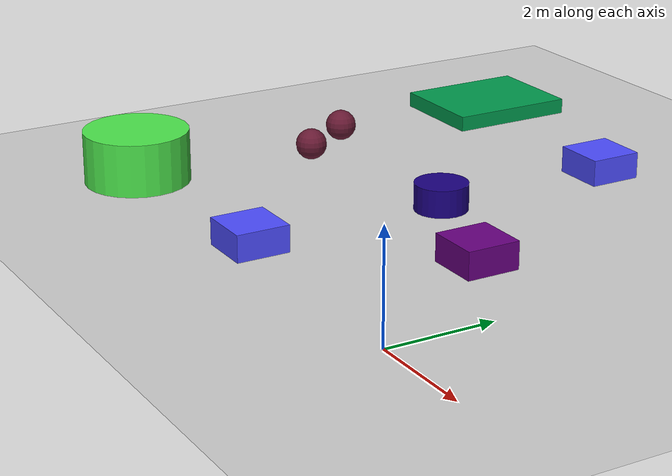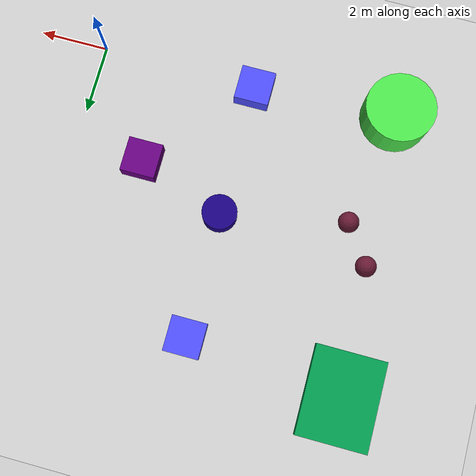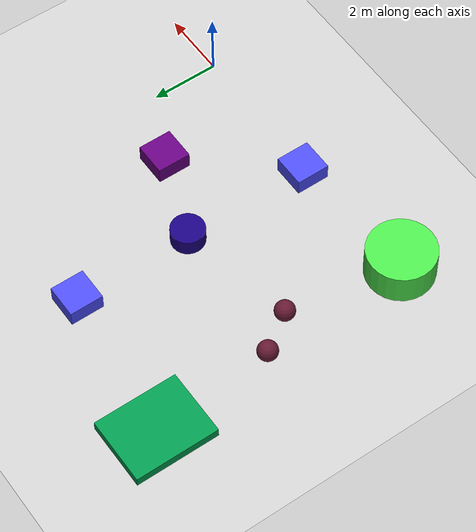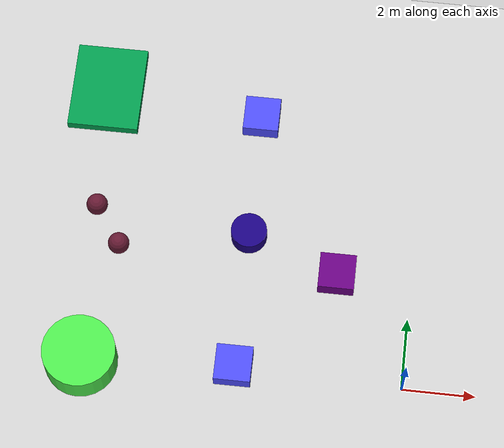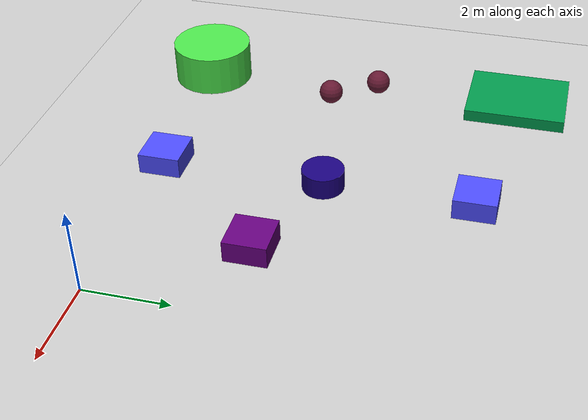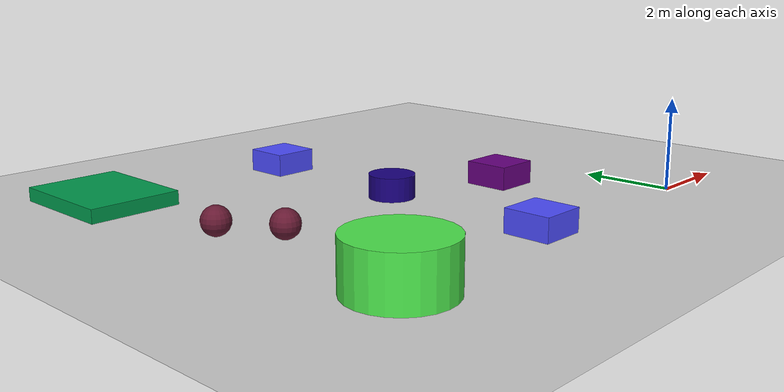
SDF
<sdf version="1.7">
 <world name="default">
  <model name="ground_plane">
   <static>1</static>
   <link name="link">
    <collision name="collision">
     <geometry><plane><normal>0 0 1</normal><size>100 100</size></plane></geometry>
     <surface><friction><ode><mu>100</mu><mu2>50</mu2></ode></friction></surface>
    </collision>
    <visual name="visual">
     <cast_shadows>0</cast_shadows>
     <geometry><plane><normal>0 0 1</normal><size>100 100</size></plane></geometry>
     <material>
      <script><uri>file://media/materials/scripts/gazebo.material</uri><name>Gazebo/Grey</name></script>
     </material>
    </visual>
   </link>
  </model>
  <model name="bed">
   <link name="link">
    <inertial>
     <mass>1</mass>
     <inertia>
      <ixx>0.166667</ixx>
      <ixy>0</ixy>
      <ixz>0</ixz>
      <iyy>0.166667</iyy>
      <iyz>0</iyz>
      <izz>0.166667</izz>
     </inertia>
    </inertial>
    <visual name="visual">
     <geometry><box><size>2 2.5 0.3</size></box></geometry>
     <material>
      <script><name>Gazebo/Grey</name><uri>file://media/materials/scripts/gazebo.material</uri></script>
      <shader type="pixel"><normal_map>__default__</normal_map></shader>
      <ambient>0 0.6 0.3 1</ambient>
      <diffuse>0.7 0.7 0.7 1</diffuse>
      <specular>0.01 0.01 0.01 1</specular>
      <emissive>0 0 0 1</emissive>
     </material>
    </visual>
    <collision name="collision">
     <geometry><box><size>2 2.5 0.3</size></box></geometry>
     <surface>
      <friction>
       <ode><mu>1</mu><mu2>1</mu2><fdir1>0 0 0</fdir1><slip1>0</slip1><slip2>0</slip2></ode>
       <torsional>
        <coefficient>1</coefficient>
        <patch_radius>0</patch_radius>
        <surface_radius>0</surface_radius>
        <use_patch_radius>1</use_patch_radius>
        <ode><slip>0</slip></ode>
       </torsional>
      </friction>
      <bounce><restitution_coefficient>0</restitution_coefficient><threshold>1e+06</threshold></bounce>
      <contact>
       <collide_without_contact>0</collide_without_contact>
       <collide_without_contact_bitmask>1</collide_without_contact_bitmask>
       <collide_bitmask>1</collide_bitmask>
       <ode>
        <soft_cfm>0</soft_cfm>
        <soft_erp>0.2</soft_erp>
        <kp>1e+13</kp>
        <kd>1</kd>
        <max_vel>0.01</max_vel>
        <min_depth>0</min_depth>
       </ode>
       <bullet>
        <split_impulse>1</split_impulse>
        <split_impulse_penetration_threshold>-0.01</split_impulse_penetration_threshold>
        <soft_cfm>0</soft_cfm>
        <soft_erp>0.2</soft_erp>
        <kp>1e+13</kp>
        <kd>1</kd>
       </bullet>
      </contact>
     </surface>
    </collision>
   </link>
   <static>0</static>
   <pose>-9.08934 8.03274 0.146251 -1e-05 0 0</pose>
  </model>
  <model name="unit_sphere777">
   <link name="link">
    <inertial>
     <mass>1</mass>
     <inertia><ixx>0.1</ixx><ixy>0</ixy><ixz>0</ixz><iyy>0.1</iyy><iyz>0</iyz><izz>0.1</izz></inertia>
    </inertial>
    <visual name="visual">
     <geometry><sphere><radius>0.3</radius></sphere></geometry>
     <material>
      <script><name>Gazebo/Grey</name><uri>file://media/materials/scripts/gazebo.material</uri></script>
      <shader type="pixel"><normal_map>__default__</normal_map></shader>
      <ambient>0.4 0.1 0.2 0</ambient>
      <diffuse>0.7 0.7 0.7 1</diffuse>
      <specular>0.01 0.01 0.01 1</specular>
      <emissive>0 0 0 1</emissive>
     </material>
    </visual>
    <collision name="collision">
     <geometry><sphere><radius>0.3</radius></sphere></geometry>
     <surface>
      <friction>
       <ode><mu>1</mu><mu2>1</mu2><fdir1>0 0 0</fdir1><slip1>0</slip1><slip2>0</slip2></ode>
       <torsional>
        <coefficient>1</coefficient>
        <patch_radius>0</patch_radius>
        <surface_radius>0</surface_radius>
        <use_patch_radius>1</use_patch_radius>
        <ode><slip>0</slip></ode>
       </torsional>
      </friction>
      <bounce><restitution_coefficient>0</restitution_coefficient><threshold>1e+06</threshold></bounce>
      <contact>
       <collide_without_contact>0</collide_without_contact>
       <collide_without_contact_bitmask>1</collide_without_contact_bitmask>
       <collide_bitmask>1</collide_bitmask>
       <ode>
        <soft_cfm>0</soft_cfm>
        <soft_erp>0.2</soft_erp>
        <kp>1e+13</kp>
        <kd>1</kd>
        <max_vel>0.01</max_vel>
        <min_depth>0</min_depth>
       </ode>
       <bullet>
        <split_impulse>1</split_impulse>
        <split_impulse_penetration_threshold>-0.01</split_impulse_penetration_threshold>
        <soft_cfm>0</soft_cfm>
        <soft_erp>0.2</soft_erp>
        <kp>1e+13</kp>
        <kd>1</kd>
       </bullet>
      </contact>
     </surface>
    </collision>
   </link>
   <static>0</static>
   <pose>-8.89889 4.39773 0.302461 0 -0 0</pose>
  </model>
  <model name="unit_sphere777_clone">
   <link name="link">
    <inertial>
     <mass>1</mass>
     <inertia><ixx>0.1</ixx><ixy>0</ixy><ixz>0</ixz><iyy>0.1</iyy><iyz>0</iyz><izz>0.1</izz></inertia>
    </inertial>
    <visual name="visual">
     <geometry><sphere><radius>0.3</radius></sphere></geometry>
     <material>
      <script><name>Gazebo/Grey</name><uri>file://media/materials/scripts/gazebo.material</uri></script>
      <shader type="pixel"><normal_map>__default__</normal_map></shader>
      <ambient>0.4 0.1 0.2 0</ambient>
      <diffuse>0.7 0.7 0.7 1</diffuse>
      <specular>0.01 0.01 0.01 1</specular>
      <emissive>0 0 0 1</emissive>
     </material>
    </visual>
    <collision name="collision">
     <geometry><sphere><radius>0.3</radius></sphere></geometry>
     <surface>
      <friction>
       <ode><mu>1</mu><mu2>1</mu2><fdir1>0 0 0</fdir1><slip1>0</slip1><slip2>0</slip2></ode>
       <torsional>
        <coefficient>1</coefficient>
        <patch_radius>0</patch_radius>
        <surface_radius>0</surface_radius>
        <use_patch_radius>1</use_patch_radius>
        <ode><slip>0</slip></ode>
       </torsional>
      </friction>
      <bounce><restitution_coefficient>0</restitution_coefficient><threshold>1e+06</threshold></bounce>
      <contact>
       <collide_without_contact>0</collide_without_contact>
       <collide_without_contact_bitmask>1</collide_without_contact_bitmask>
       <collide_bitmask>1</collide_bitmask>
       <ode>
        <soft_cfm>0</soft_cfm>
        <soft_erp>0.2</soft_erp>
        <kp>1e+13</kp>
        <kd>1</kd>
        <max_vel>0.01</max_vel>
        <min_depth>0</min_depth>
       </ode>
       <bullet>
        <split_impulse>1</split_impulse>
        <split_impulse_penetration_threshold>-0.01</split_impulse_penetration_threshold>
        <soft_cfm>0</soft_cfm>
        <soft_erp>0.2</soft_erp>
        <kp>1e+13</kp>
        <kd>1</kd>
       </bullet>
      </contact>
     </surface>
    </collision>
   </link>
   <static>0</static>
   <pose>-8.14935 3.3065 0.303921 0 -0 0</pose>
  </model>
  <model name="unit_cylinder11111111">
   <link name="link">
    <inertial>
     <mass>1</mass>
     <inertia><ixx>0.145833</ixx><ixy>0</ixy><ixz>0</ixz><iyy>0.145833</iyy><iyz>0</iyz><izz>0.125</izz></inertia>
    </inertial>
    <visual name="visual">
     <geometry><cylinder><radius>1</radius><length>1</length></cylinder></geometry>
     <material>
      <script><name>Gazebo/Grey</name><uri>file://media/materials/scripts/gazebo.material</uri></script>
      <shader type="pixel"><normal_map>__default__</normal_map></shader>
      <ambient>0.3 0.9 0.3 1</ambient>
      <diffuse>0.7 0.7 0.7 1</diffuse>
      <specular>0.01 0.01 0.01 1</specular>
      <emissive>0 0 0 1</emissive>
     </material>
    </visual>
    <collision name="collision">
     <geometry><cylinder><radius>1</radius><length>1</length></cylinder></geometry>
     <surface>
      <friction>
       <ode><mu>1</mu><mu2>1</mu2><fdir1>0 0 0</fdir1><slip1>0</slip1><slip2>0</slip2></ode>
       <torsional>
        <coefficient>1</coefficient>
        <patch_radius>0</patch_radius>
        <surface_radius>0</surface_radius>
        <use_patch_radius>1</use_patch_radius>
        <ode><slip>0</slip></ode>
       </torsional>
      </friction>
      <bounce><restitution_coefficient>0</restitution_coefficient><threshold>1e+06</threshold></bounce>
      <contact>
       <collide_without_contact>0</collide_without_contact>
       <collide_without_contact_bitmask>1</collide_without_contact_bitmask>
       <collide_bitmask>1</collide_bitmask>
       <ode>
        <soft_cfm>0</soft_cfm>
        <soft_erp>0.2</soft_erp>
        <kp>1e+13</kp>
        <kd>1</kd>
        <max_vel>0.01</max_vel>
        <min_depth>0</min_depth>
       </ode>
       <bullet>
        <split_impulse>1</split_impulse>
        <split_impulse_penetration_threshold>-0.01</split_impulse_penetration_threshold>
        <soft_cfm>0</soft_cfm>
        <soft_erp>0.2</soft_erp>
        <kp>1e+13</kp>
        <kd>1</kd>
       </bullet>
      </contact>
     </surface>
    </collision>
   </link>
   <static>0</static>
   <pose>-8.73617 -0.103646 0.499992 -3e-06 3e-06 0</pose>
  </model>
  <model name="unit_box_00000">
   <link name="link">
    <inertial>
     <mass>1</mass>
     <inertia>
      <ixx>0.166667</ixx>
      <ixy>0</ixy>
      <ixz>0</ixz>
      <iyy>0.166667</iyy>
      <iyz>0</iyz>
      <izz>0.166667</izz>
     </inertia>
    </inertial>
    <visual name="visual">
     <geometry><box><size>1 1 0.5</size></box></geometry>
     <material>
      <script><name>Gazebo/Grey</name><uri>file://media/materials/scripts/gazebo.material</uri></script>
      <shader type="pixel"><normal_map>__default__</normal_map></shader>
      <ambient>0.3 0.3 1 1</ambient>
      <diffuse>0.7 0.7 0.7 1</diffuse>
      <specular>0.01 0.01 0.01 1</specular>
      <emissive>0 0 0 1</emissive>
     </material>
     <pose>0 0 -0.25 0 -0 0</pose>
    </visual>
    <collision name="collision">
     <pose>0 0 -0.25 0 -0 0</pose>
     <geometry><box><size>1 1 0.5</size></box></geometry>
     <surface>
      <friction>
       <ode><mu>1</mu><mu2>1</mu2><fdir1>0 0 0</fdir1><slip1>0</slip1><slip2>0</slip2></ode>
       <torsional>
        <coefficient>1</coefficient>
        <patch_radius>0</patch_radius>
        <surface_radius>0</surface_radius>
        <use_patch_radius>1</use_patch_radius>
        <ode><slip>0</slip></ode>
       </torsional>
      </friction>
      <bounce><restitution_coefficient>0</restitution_coefficient><threshold>1e+06</threshold></bounce>
      <contact>
       <collide_without_contact>0</collide_without_contact>
       <collide_without_contact_bitmask>1</collide_without_contact_bitmask>
       <collide_bitmask>1</collide_bitmask>
       <ode>
        <soft_cfm>0</soft_cfm>
        <soft_erp>0.2</soft_erp>
        <kp>1e+13</kp>
        <kd>1</kd>
        <max_vel>0.01</max_vel>
        <min_depth>0</min_depth>
       </ode>
       <bullet>
        <split_impulse>1</split_impulse>
        <split_impulse_penetration_threshold>-0.01</split_impulse_penetration_threshold>
        <soft_cfm>0</soft_cfm>
        <soft_erp>0.2</soft_erp>
        <kp>1e+13</kp>
        <kd>1</kd>
       </bullet>
      </contact>
     </surface>
    </collision>
   </link>
   <static>0</static>
   <pose>-4.59361 0.137024 0.499989 0 1e-05 0</pose>
  </model>
  <model name="unit_box_00000_clone">
   <link name="link">
    <inertial>
     <mass>1</mass>
     <inertia>
      <ixx>0.166667</ixx>
      <ixy>0</ixy>
      <ixz>0</ixz>
      <iyy>0.166667</iyy>
      <iyz>0</iyz>
      <izz>0.166667</izz>
     </inertia>
    </inertial>
    <visual name="visual">
     <geometry><box><size>1 1 0.5</size></box></geometry>
     <material>
      <script><name>Gazebo/Grey</name><uri>file://media/materials/scripts/gazebo.material</uri></script>
      <shader type="pixel"><normal_map>__default__</normal_map></shader>
      <ambient>0.3 0.3 1 1</ambient>
      <diffuse>0.7 0.7 0.7 1</diffuse>
      <specular>0.01 0.01 0.01 1</specular>
      <emissive>0 0 0 1</emissive>
     </material>
     <pose>0 0 -0.25 0 -0 0</pose>
    </visual>
    <collision name="collision">
     <pose>0 0 -0.25 0 -0 0</pose>
     <geometry><box><size>1 1 0.5</size></box></geometry>
     <surface>
      <friction>
       <ode><mu>1</mu><mu2>1</mu2><fdir1>0 0 0</fdir1><slip1>0</slip1><slip2>0</slip2></ode>
       <torsional>
        <coefficient>1</coefficient>
        <patch_radius>0</patch_radius>
        <surface_radius>0</surface_radius>
        <use_patch_radius>1</use_patch_radius>
        <ode><slip>0</slip></ode>
       </torsional>
      </friction>
      <bounce><restitution_coefficient>0</restitution_coefficient><threshold>1e+06</threshold></bounce>
      <contact>
       <collide_without_contact>0</collide_without_contact>
       <collide_without_contact_bitmask>1</collide_without_contact_bitmask>
       <collide_bitmask>1</collide_bitmask>
       <ode>
        <soft_cfm>0</soft_cfm>
        <soft_erp>0.2</soft_erp>
        <kp>1e+13</kp>
        <kd>1</kd>
        <max_vel>0.01</max_vel>
        <min_depth>0</min_depth>
       </ode>
       <bullet>
        <split_impulse>1</split_impulse>
        <split_impulse_penetration_threshold>-0.01</split_impulse_penetration_threshold>
        <soft_cfm>0</soft_cfm>
        <soft_erp>0.2</soft_erp>
        <kp>1e+13</kp>
        <kd>1</kd>
       </bullet>
      </contact>
     </surface>
    </collision>
   </link>
   <static>0</static>
   <pose>-4.59827 7.57003 0.499989 0 1e-05 0</pose>
  </model>
  <model name="unit_cylinder333333333">
   <link name="link">
    <inertial>
     <mass>1</mass>
     <inertia><ixx>0.145833</ixx><ixy>0</ixy><ixz>0</ixz><iyy>0.145833</iyy><iyz>0</iyz><izz>0.125</izz></inertia>
    </inertial>
    <visual name="visual">
     <geometry><cylinder><radius>0.5</radius><length>1</length></cylinder></geometry>
     <material>
      <script><name>Gazebo/Grey</name><uri>file://media/materials/scripts/gazebo.material</uri></script>
      <shader type="pixel"><normal_map>__default__</normal_map></shader>
      <ambient>0.1 0 0.5 0</ambient>
      <diffuse>0.7 0.7 0.7 1</diffuse>
      <specular>0.01 0.01 0.01 1</specular>
      <emissive>0 0 0 1</emissive>
     </material>
    </visual>
    <collision name="collision">
     <geometry><cylinder><radius>0.5</radius><length>1</length></cylinder></geometry>
     <surface>
      <friction>
       <ode><mu>1</mu><mu2>1</mu2><fdir1>0 0 0</fdir1><slip1>0</slip1><slip2>0</slip2></ode>
       <torsional>
        <coefficient>1</coefficient>
        <patch_radius>0</patch_radius>
        <surface_radius>0</surface_radius>
        <use_patch_radius>1</use_patch_radius>
        <ode><slip>0</slip></ode>
       </torsional>
      </friction>
      <bounce><restitution_coefficient>0</restitution_coefficient><threshold>1e+06</threshold></bounce>
      <contact>
       <collide_without_contact>0</collide_without_contact>
       <collide_without_contact_bitmask>1</collide_without_contact_bitmask>
       <collide_bitmask>1</collide_bitmask>
       <ode>
        <soft_cfm>0</soft_cfm>
        <soft_erp>0.2</soft_erp>
        <kp>1e+13</kp>
        <kd>1</kd>
        <max_vel>0.01</max_vel>
        <min_depth>0</min_depth>
       </ode>
       <bullet>
        <split_impulse>1</split_impulse>
        <split_impulse_penetration_threshold>-0.01</split_impulse_penetration_threshold>
        <soft_cfm>0</soft_cfm>
        <soft_erp>0.2</soft_erp>
        <kp>1e+13</kp>
        <kd>1</kd>
       </bullet>
      </contact>
     </surface>
    </collision>
   </link>
   <static>0</static>
   <pose>-4.58549 3.99585 0 0 -0 0</pose>
  </model>
  <model name="unit_box_122_0">
   <link name="link">
    <inertial>
     <mass>1</mass>
     <inertia>
      <ixx>0.166667</ixx>
      <ixy>0</ixy>
      <ixz>0</ixz>
      <iyy>0.166667</iyy>
      <iyz>0</iyz>
      <izz>0.166667</izz>
     </inertia>
    </inertial>
    <visual name="visual">
     <geometry><box><size>1 1 1</size></box></geometry>
     <material>
      <script><name>Gazebo/Grey</name><uri>file://media/materials/scripts/gazebo.material</uri></script>
      <shader type="pixel"><normal_map>__default__</normal_map></shader>
      <ambient>0.4 0 0.5 0</ambient>
      <diffuse>0.7 0.7 0.7 1</diffuse>
      <specular>0.01 0.01 0.01 1</specular>
      <emissive>0 0 0 1</emissive>
     </material>
    </visual>
    <collision name="collision">
     <geometry><box><size>1 1 1</size></box></geometry>
     <surface>
      <friction>
       <ode><mu>1</mu><mu2>1</mu2><fdir1>0 0 0</fdir1><slip1>0</slip1><slip2>0</slip2></ode>
       <torsional>
        <coefficient>1</coefficient>
        <patch_radius>0</patch_radius>
        <surface_radius>0</surface_radius>
        <use_patch_radius>1</use_patch_radius>
        <ode><slip>0</slip></ode>
       </torsional>
      </friction>
      <bounce><restitution_coefficient>0</restitution_coefficient><threshold>1e+06</threshold></bounce>
      <contact>
       <collide_without_contact>0</collide_without_contact>
       <collide_without_contact_bitmask>1</collide_without_contact_bitmask>
       <collide_bitmask>1</collide_bitmask>
       <ode>
        <soft_cfm>0</soft_cfm>
        <soft_erp>0.2</soft_erp>
        <kp>1e+13</kp>
        <kd>1</kd>
        <max_vel>0.01</max_vel>
        <min_depth>0</min_depth>
       </ode>
       <bullet>
        <split_impulse>1</split_impulse>
        <split_impulse_penetration_threshold>-0.01</split_impulse_penetration_threshold>
        <soft_cfm>0</soft_cfm>
        <soft_erp>0.2</soft_erp>
        <kp>1e+13</kp>
        <kd>1</kd>
       </bullet>
      </contact>
     </surface>
    </collision>
   </link>
   <static>0</static>
   <pose>-2.04308 3.055 0 0 -0 0</pose>
  </model>
 </world>
</sdf>
